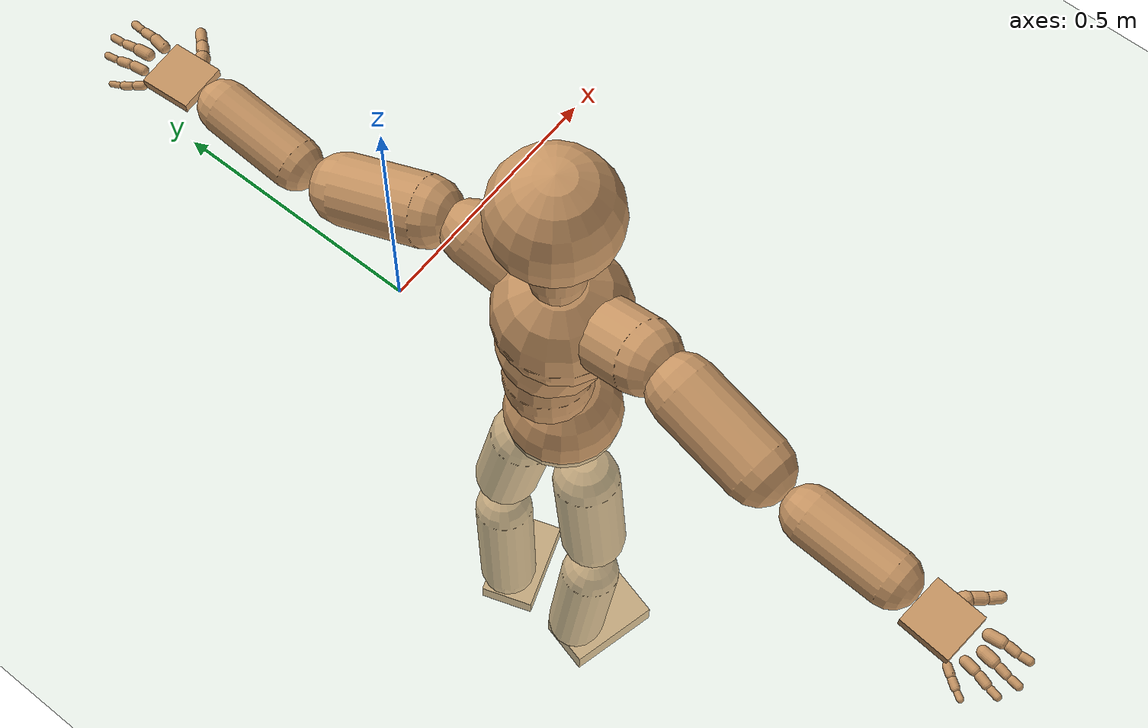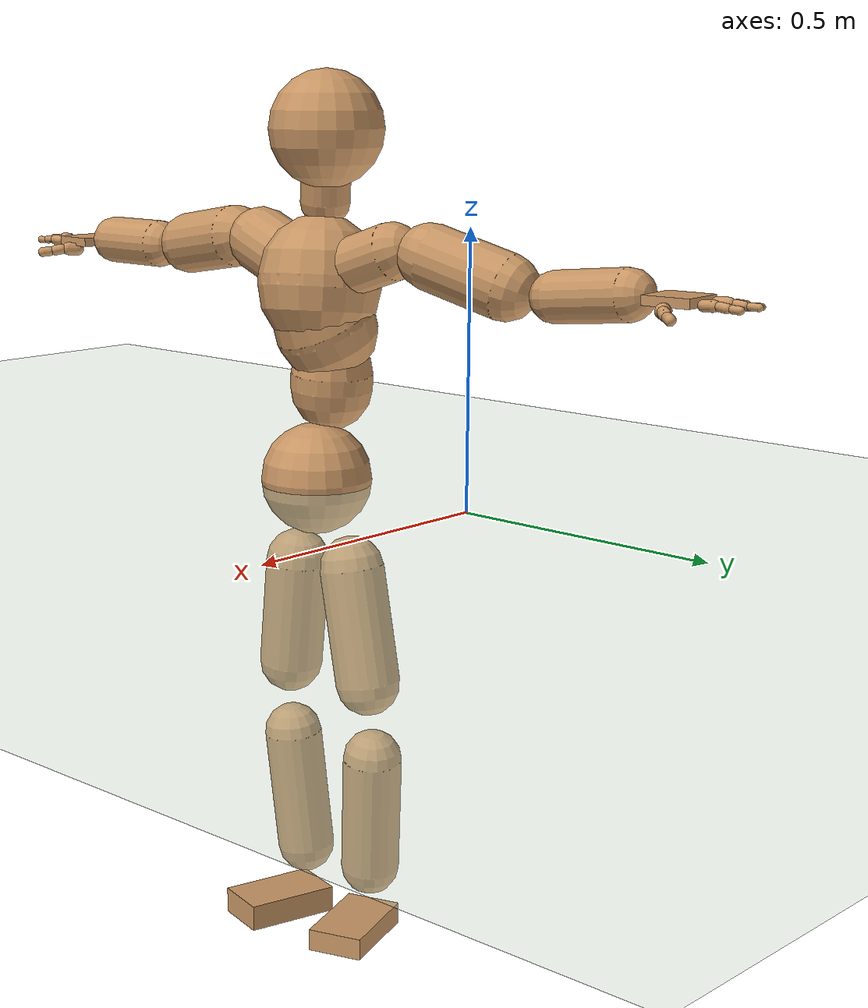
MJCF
<mujoco model="humanoid">
  <compiler coordinate="local" angle="radian"/>
  <default>
    <joint damping="0.0" armature="0.01" stiffness="0.0" limited="true"/>
    <geom conaffinity="1" condim="3" contype="7" margin="0.001" rgba="0.8 0.6 .4 1"/>
  </default>
  <asset>
    <texture type="skybox" builtin="gradient" rgb1=".4 .5 .6" rgb2="0 0 0" width="100" height="100"/>
    <texture builtin="flat" height="1278" mark="cross" markrgb="1 1 1" name="texgeom" random="0.01" rgb1="0.8 0.6 0.4" rgb2="0.8 0.6 0.4" type="cube" width="127"/>
    <texture builtin="checker" height="100" name="texplane" rgb1="0 0 0" rgb2="0.8 0.8 0.8" type="2d" width="100"/>
    <material name="MatPlane" reflectance="0.5" shininess="1" specular="1" texrepeat="60 60" texture="texplane"/>
    <material name="geom" texture="texgeom" texuniform="true"/>
  </asset>
  <worldbody>
    <light cutoff="100" diffuse="1 1 1" dir="-0 0 -1.3" directional="true" exponent="1" pos="0 0 1.3" specular=".1 .1 .1"/>
    <geom conaffinity="1" condim="3" name="floor" pos="0 0 0" rgba="0.8 0.9 0.8 1" size="100 100 .2" type="plane" material="MatPlane"/>
    <body name="Pelvis" pos="0.0014 -0.3707 0.0089">
      <freejoint name="Pelvis"/>
      <geom type="sphere" contype="1" conaffinity="1" density="500" size="0.1055" pos="0.0000 0.0000 0.0000" name="Pelvis"/>
      <body name="L_Hip" pos="-0.022 0.0567 -0.0939">
        <joint name="L_Hip_x" type="hinge" pos="0 0 0" axis="1 0 0" stiffness="800" damping="80" armature="0.02" range="-180.0000 180.0000"/>
        <joint name="L_Hip_y" type="hinge" pos="0 0 0" axis="0 1 0" stiffness="800" damping="80" armature="0.02" range="-180.0000 180.0000"/>
        <joint name="L_Hip_z" type="hinge" pos="0 0 0" axis="0 0 1" stiffness="800" damping="80" armature="0.02" range="-180.0000 180.0000"/>
        <geom type="capsule" contype="1" conaffinity="1" density="500" fromto="-0.0012 0.0131 -0.0740 -0.0047 0.0524 -0.2959" size="0.0613" name="L_Hip"/>
        <body name="L_Knee" pos="-0.0058 0.0655 -0.3699">
          <joint name="L_Knee_x" type="hinge" pos="0 0 0" axis="1 0 0" stiffness="800" damping="80" armature="0.02" range="-180.0000 180.0000"/>
          <joint name="L_Knee_y" type="hinge" pos="0 0 0" axis="0 1 0" stiffness="800" damping="80" armature="0.02" range="-180.0000 180.0000"/>
          <joint name="L_Knee_z" type="hinge" pos="0 0 0" axis="0 0 1" stiffness="800" damping="80" armature="0.02" range="-180.0000 180.0000"/>
          <geom type="capsule" contype="1" conaffinity="1" density="500" fromto="-0.0081 -0.0094 -0.0790 -0.0325 -0.0376 -0.3159" size="0.0564" name="L_Knee"/>
          <body name="L_Ankle" pos="-0.0407 -0.047 -0.3949">
            <joint name="L_Ankle_x" type="hinge" pos="0 0 0" axis="1 0 0" stiffness="800" damping="80" armature="0.02" range="-180.0000 180.0000"/>
            <joint name="L_Ankle_y" type="hinge" pos="0 0 0" axis="0 1 0" stiffness="800" damping="80" armature="0.02" range="-180.0000 180.0000"/>
            <joint name="L_Ankle_z" type="hinge" pos="0 0 0" axis="0 0 1" stiffness="800" damping="80" armature="0.02" range="-180.0000 180.0000"/>
            <geom type="box" contype="1" conaffinity="1" density="500" pos="0.0661 0.0225 -0.0283" size="0.0921 0.0539 0.021" quat="0.9866 0.0000 0.0000 0.1634" name="L_Ankle"/>
            <body name="L_Toe" pos="0.1323 0.0451 -0.0566">
              <joint name="L_Toe_x" type="hinge" pos="0 0 0" axis="1 0 0" stiffness="500" damping="50" armature="0.02" range="-180.0000 180.0000"/>
              <joint name="L_Toe_y" type="hinge" pos="0 0 0" axis="0 1 0" stiffness="500" damping="50" armature="0.02" range="-180.0000 180.0000"/>
              <joint name="L_Toe_z" type="hinge" pos="0 0 0" axis="0 0 1" stiffness="500" damping="50" armature="0.02" range="-180.0000 180.0000"/>
              <geom type="box" contype="1" conaffinity="1" density="500" pos="0.0000 0.0000 0.0292" size="0.0011 0.0026 0.0011" quat="0.9858 0.0000 0.0000 0.1677" name="L_Toe"/>
            </body>
          </body>
        </body>
      </body>
      <body name="R_Hip" pos="-0.0141 -0.0589 -0.1048">
        <joint name="R_Hip_x" type="hinge" pos="0 0 0" axis="1 0 0" stiffness="800" damping="80" armature="0.02" range="-180.0000 180.0000"/>
        <joint name="R_Hip_y" type="hinge" pos="0 0 0" axis="0 1 0" stiffness="800" damping="80" armature="0.02" range="-180.0000 180.0000"/>
        <joint name="R_Hip_z" type="hinge" pos="0 0 0" axis="0 0 1" stiffness="800" damping="80" armature="0.02" range="-180.0000 180.0000"/>
        <geom type="capsule" contype="1" conaffinity="1" density="500" fromto="-0.0029 -0.0098 -0.0707 -0.0114 -0.0391 -0.2828" size="0.0612" name="R_Hip"/>
        <body name="R_Knee" pos="-0.0143 -0.0489 -0.3535">
          <joint name="R_Knee_x" type="hinge" pos="0 0 0" axis="1 0 0" stiffness="800" damping="80" armature="0.02" range="-180.0000 180.0000"/>
          <joint name="R_Knee_y" type="hinge" pos="0 0 0" axis="0 1 0" stiffness="800" damping="80" armature="0.02" range="-180.0000 180.0000"/>
          <joint name="R_Knee_z" type="hinge" pos="0 0 0" axis="0 0 1" stiffness="800" damping="80" armature="0.02" range="-180.0000 180.0000"/>
          <geom type="capsule" contype="1" conaffinity="1" density="500" fromto="-0.0080 0.0036 -0.0815 -0.0319 0.0144 -0.3259" size="0.0562" name="R_Knee"/>
          <body name="R_Ankle" pos="-0.0399 0.018 -0.4073">
            <joint name="R_Ankle_x" type="hinge" pos="0 0 0" axis="1 0 0" stiffness="800" damping="80" armature="0.02" range="-180.0000 180.0000"/>
            <joint name="R_Ankle_y" type="hinge" pos="0 0 0" axis="0 1 0" stiffness="800" damping="80" armature="0.02" range="-180.0000 180.0000"/>
            <joint name="R_Ankle_z" type="hinge" pos="0 0 0" axis="0 0 1" stiffness="800" damping="80" armature="0.02" range="-180.0000 180.0000"/>
            <geom type="box" contype="1" conaffinity="1" density="500" pos="0.0695 -0.0178 -0.0278" size="0.0921 0.0539 0.0252" quat="0.9921 0.0000 0.0000 -0.1253" name="R_Ankle"/>
            <body name="R_Toe" pos="0.1389 -0.0357 -0.0556">
              <joint name="R_Toe_x" type="hinge" pos="0 0 0" axis="1 0 0" stiffness="500" damping="50" armature="0.02" range="-180.0000 180.0000"/>
              <joint name="R_Toe_y" type="hinge" pos="0 0 0" axis="0 1 0" stiffness="500" damping="50" armature="0.02" range="-180.0000 180.0000"/>
              <joint name="R_Toe_z" type="hinge" pos="0 0 0" axis="0 0 1" stiffness="500" damping="50" armature="0.02" range="-180.0000 180.0000"/>
              <geom type="box" contype="1" conaffinity="1" density="500" pos="0.0000 0.0000 0.0245" size="0.001 0.0026 0.0011" quat="0.9931 0.0000 0.0000 -0.1170" name="R_Toe"/>
            </body>
          </body>
        </body>
      </body>
      <body name="Torso" pos="-0.0387 -0.0008 0.1068">
        <joint name="Torso_x" type="hinge" pos="0 0 0" axis="1 0 0" stiffness="1000" damping="100" armature="0.02" range="-180.0000 180.0000"/>
        <joint name="Torso_y" type="hinge" pos="0 0 0" axis="0 1 0" stiffness="1000" damping="100" armature="0.02" range="-180.0000 180.0000"/>
        <joint name="Torso_z" type="hinge" pos="0 0 0" axis="0 0 1" stiffness="1000" damping="100" armature="0.02" range="-180.0000 180.0000"/>
        <geom type="capsule" contype="1" conaffinity="1" density="500" fromto="0.0031 0.0068 0.0899 0.0021 0.0045 0.0599" size="0.0773" name="Torso"/>
        <body name="Spine" pos="0.0052 0.0113 0.1499">
          <joint name="Spine_x" type="hinge" pos="0 0 0" axis="1 0 0" stiffness="1000" damping="100" armature="0.02" range="-180.0000 180.0000"/>
          <joint name="Spine_y" type="hinge" pos="0 0 0" axis="0 1 0" stiffness="1000" damping="100" armature="0.02" range="-180.0000 180.0000"/>
          <joint name="Spine_z" type="hinge" pos="0 0 0" axis="0 0 1" stiffness="1000" damping="100" armature="0.02" range="-180.0000 180.0000"/>
          <geom type="capsule" contype="1" conaffinity="1" density="500" fromto="0.0166 -0.0058 0.0351 0.0111 -0.0038 0.0234" size="0.0961" name="Spine"/>
          <body name="Chest" pos="0.0277 -0.0096 0.0585">
            <joint name="Chest_x" type="hinge" pos="0 0 0" axis="1 0 0" stiffness="1000" damping="100" armature="0.02" range="-180.0000 180.0000"/>
            <joint name="Chest_y" type="hinge" pos="0 0 0" axis="0 1 0" stiffness="1000" damping="100" armature="0.02" range="-180.0000 180.0000"/>
            <joint name="Chest_z" type="hinge" pos="0 0 0" axis="0 0 1" stiffness="1000" damping="100" armature="0.02" range="-180.0000 180.0000"/>
            <geom type="capsule" contype="1" conaffinity="1" density="500" fromto="-0.0080 -0.0036 0.0639 -0.0053 -0.0024 0.0426" size="0.1149" name="Chest"/>
            <body name="Neck" pos="-0.0293 -0.0118 0.1662">
              <joint name="Neck_x" type="hinge" pos="0 0 0" axis="1 0 0" stiffness="500" damping="50" armature="0.02" range="-180.0000 180.0000"/>
              <joint name="Neck_y" type="hinge" pos="0 0 0" axis="0 1 0" stiffness="500" damping="50" armature="0.02" range="-180.0000 180.0000"/>
              <joint name="Neck_z" type="hinge" pos="0 0 0" axis="0 0 1" stiffness="500" damping="50" armature="0.02" range="-180.0000 180.0000"/>
              <geom type="capsule" contype="1" conaffinity="1" density="500" fromto="0.0042 0.0051 0.0332 0.0168 0.0203 0.1329" size="0.0467" name="Neck"/>
              <body name="Head" pos="0.021 0.0253 0.1662">
                <joint name="Head_x" type="hinge" pos="0 0 0" axis="1 0 0" stiffness="500" damping="50" armature="0.02" range="-180.0000 180.0000"/>
                <joint name="Head_y" type="hinge" pos="0 0 0" axis="0 1 0" stiffness="500" damping="50" armature="0.02" range="-180.0000 180.0000"/>
                <joint name="Head_z" type="hinge" pos="0 0 0" axis="0 0 1" stiffness="500" damping="50" armature="0.02" range="-180.0000 180.0000"/>
                <geom type="sphere" contype="1" conaffinity="1" density="500" size="0.1075" pos="0.0000 0.0000 0.0000" name="Head"/>
              </body>
            </body>
            <body name="L_Thorax" pos="-0.0038 0.0461 0.0763">
              <joint name="L_Thorax_x" type="hinge" pos="0 0 0" axis="1 0 0" stiffness="500" damping="50" armature="0.02" range="-180.0000 180.0000"/>
              <joint name="L_Thorax_y" type="hinge" pos="0 0 0" axis="0 1 0" stiffness="500" damping="50" armature="0.02" range="-180.0000 180.0000"/>
              <joint name="L_Thorax_z" type="hinge" pos="0 0 0" axis="0 0 1" stiffness="500" damping="50" armature="0.02" range="-180.0000 180.0000"/>
              <geom type="capsule" contype="1" conaffinity="1" density="500" fromto="-0.0024 0.0312 0.0109 -0.0096 0.1249 0.0434" size="0.0539" name="L_Thorax"/>
              <body name="L_Shoulder" pos="-0.0119 0.1561 0.0543">
                <joint name="L_Shoulder_x" type="hinge" pos="0 0 0" axis="1 0 0" stiffness="500" damping="50" armature="0.02" range="-180.0000 180.0000"/>
                <joint name="L_Shoulder_y" type="hinge" pos="0 0 0" axis="0 1 0" stiffness="500" damping="50" armature="0.02" range="-180.0000 180.0000"/>
                <joint name="L_Shoulder_z" type="hinge" pos="0 0 0" axis="0 0 1" stiffness="500" damping="50" armature="0.02" range="-180.0000 180.0000"/>
                <geom type="capsule" contype="1" conaffinity="1" density="500" fromto="-0.0105 0.0491 -0.0149 -0.0420 0.1964 -0.0596" size="0.0602" name="L_Shoulder"/>
                <body name="L_Elbow" pos="-0.0525 0.2455 -0.0745">
                  <joint name="L_Elbow_x" type="hinge" pos="0 0 0" axis="1 0 0" stiffness="500" damping="50" armature="0.02" range="-720.0000 720.0000"/>
                  <joint name="L_Elbow_y" type="hinge" pos="0 0 0" axis="0 1 0" stiffness="500" damping="50" armature="0.02" range="-720.0000 720.0000"/>
                  <joint name="L_Elbow_z" type="hinge" pos="0 0 0" axis="0 0 1" stiffness="500" damping="50" armature="0.02" range="-720.0000 720.0000"/>
                  <geom type="capsule" contype="1" conaffinity="1" density="500" fromto="0.0005 0.0510 0.0054 0.0020 0.2039 0.0216" size="0.0459" name="L_Elbow"/>
                  <body name="L_Wrist" pos="0.0025 0.2548 0.027">
                    <joint name="L_Wrist_x" type="hinge" pos="0 0 0" axis="1 0 0" stiffness="300" damping="30" armature="0.02" range="-180.0000 180.0000"/>
                    <joint name="L_Wrist_y" type="hinge" pos="0 0 0" axis="0 1 0" stiffness="300" damping="30" armature="0.02" range="-180.0000 180.0000"/>
                    <joint name="L_Wrist_z" type="hinge" pos="0 0 0" axis="0 0 1" stiffness="300" damping="30" armature="0.02" range="-180.0000 180.0000"/>
                    <geom type="box" contype="1" conaffinity="1" density="500" pos="-0.0031 0.0431 -0.0054" size="0.0447 0.0435 0.0085" quat="0.7321 0.0000 0.0000 -0.6812" name="L_Wrist"/>
                    <body name="L_Index1" pos="0.0221 0.1018 -0.0075">
                      <joint name="L_Index1_x" type="hinge" pos="0 0 0" axis="1 0 0" stiffness="100" damping="10" armature="0.02" range="-180.0000 180.0000"/>
                      <joint name="L_Index1_y" type="hinge" pos="0 0 0" axis="0 1 0" stiffness="100" damping="10" armature="0.02" range="-180.0000 180.0000"/>
                      <joint name="L_Index1_z" type="hinge" pos="0 0 0" axis="0 0 1" stiffness="100" damping="10" armature="0.02" range="-180.0000 180.0000"/>
                      <geom type="capsule" contype="1" conaffinity="1" density="500" fromto="0.0008 0.0066 0.0004 0.0031 0.0264 0.0016" size="0.0101" name="L_Index1"/>
                      <body name="L_Index2" pos="0.0038 0.033 0.002">
                        <joint name="L_Index2_x" type="hinge" pos="0 0 0" axis="1 0 0" stiffness="100" damping="10" armature="0.02" range="-180.0000 180.0000"/>
                        <joint name="L_Index2_y" type="hinge" pos="0 0 0" axis="0 1 0" stiffness="100" damping="10" armature="0.02" range="-180.0000 180.0000"/>
                        <joint name="L_Index2_z" type="hinge" pos="0 0 0" axis="0 0 1" stiffness="100" damping="10" armature="0.02" range="-180.0000 180.0000"/>
                        <geom type="capsule" contype="1" conaffinity="1" density="500" fromto="-0.0000 0.0046 -0.0005 -0.0002 0.0186 -0.0021" size="0.0081" name="L_Index2"/>
                        <body name="L_Index3" pos="-0.0002 0.0232 -0.0026">
                          <joint name="L_Index3_x" type="hinge" pos="0 0 0" axis="1 0 0" stiffness="100" damping="10" armature="0.02" range="-180.0000 180.0000"/>
                          <joint name="L_Index3_y" type="hinge" pos="0 0 0" axis="0 1 0" stiffness="100" damping="10" armature="0.02" range="-180.0000 180.0000"/>
                          <joint name="L_Index3_z" type="hinge" pos="0 0 0" axis="0 0 1" stiffness="100" damping="10" armature="0.02" range="-180.0000 180.0000"/>
                          <geom type="capsule" contype="1" conaffinity="1" density="500" fromto="0.0004 0.0050 -0.0001 0.0014 0.0202 -0.0005" size="0.0069" name="L_Index3"/>
                        </body>
                      </body>
                    </body>
                    <body name="L_Middle1" pos="-0.0039 0.1098 -0.0045">
                      <joint name="L_Middle1_x" type="hinge" pos="0 0 0" axis="1 0 0" stiffness="100" damping="10" armature="0.02" range="-180.0000 180.0000"/>
                      <joint name="L_Middle1_y" type="hinge" pos="0 0 0" axis="0 1 0" stiffness="100" damping="10" armature="0.02" range="-180.0000 180.0000"/>
                      <joint name="L_Middle1_z" type="hinge" pos="0 0 0" axis="0 0 1" stiffness="100" damping="10" armature="0.02" range="-180.0000 180.0000"/>
                      <geom type="capsule" contype="1" conaffinity="1" density="500" fromto="-0.0009 0.0063 0.0001 -0.0036 0.0252 0.0005" size="0.0102" name="L_Middle1"/>
                      <body name="L_Middle2" pos="-0.0045 0.0315 0.0006">
                        <joint name="L_Middle2_x" type="hinge" pos="0 0 0" axis="1 0 0" stiffness="100" damping="10" armature="0.02" range="-180.0000 180.0000"/>
                        <joint name="L_Middle2_y" type="hinge" pos="0 0 0" axis="0 1 0" stiffness="100" damping="10" armature="0.02" range="-180.0000 180.0000"/>
                        <joint name="L_Middle2_z" type="hinge" pos="0 0 0" axis="0 0 1" stiffness="100" damping="10" armature="0.02" range="-180.0000 180.0000"/>
                        <geom type="capsule" contype="1" conaffinity="1" density="500" fromto="-0.0009 0.0048 -0.0005 -0.0035 0.0192 -0.0021" size="0.0075" name="L_Middle2"/>
                        <body name="L_Middle3" pos="-0.0044 0.024 -0.0026">
                          <joint name="L_Middle3_x" type="hinge" pos="0 0 0" axis="1 0 0" stiffness="100" damping="10" armature="0.02" range="-180.0000 180.0000"/>
                          <joint name="L_Middle3_y" type="hinge" pos="0 0 0" axis="0 1 0" stiffness="100" damping="10" armature="0.02" range="-180.0000 180.0000"/>
                          <joint name="L_Middle3_z" type="hinge" pos="0 0 0" axis="0 0 1" stiffness="100" damping="10" armature="0.02" range="-180.0000 180.0000"/>
                          <geom type="capsule" contype="1" conaffinity="1" density="500" fromto="-0.0005 0.0052 -0.0001 -0.0019 0.0208 -0.0005" size="0.0065" name="L_Middle3"/>
                        </body>
                      </body>
                    </body>
                    <body name="L_Pinky1" pos="-0.0483 0.0838 -0.014">
                      <joint name="L_Pinky1_x" type="hinge" pos="0 0 0" axis="1 0 0" stiffness="100" damping="10" armature="0.02" range="-180.0000 180.0000"/>
                      <joint name="L_Pinky1_y" type="hinge" pos="0 0 0" axis="0 1 0" stiffness="100" damping="10" armature="0.02" range="-180.0000 180.0000"/>
                      <joint name="L_Pinky1_z" type="hinge" pos="0 0 0" axis="0 0 1" stiffness="100" damping="10" armature="0.02" range="-180.0000 180.0000"/>
                      <geom type="capsule" contype="1" conaffinity="1" density="500" fromto="-0.0024 0.0034 -0.0004 -0.0097 0.0135 -0.0015" size="0.0072" name="L_Pinky1"/>
                      <body name="L_Pinky2" pos="-0.0122 0.0169 -0.0018">
                        <joint name="L_Pinky2_x" type="hinge" pos="0 0 0" axis="1 0 0" stiffness="100" damping="10" armature="0.02" range="-180.0000 180.0000"/>
                        <joint name="L_Pinky2_y" type="hinge" pos="0 0 0" axis="0 1 0" stiffness="100" damping="10" armature="0.02" range="-180.0000 180.0000"/>
                        <joint name="L_Pinky2_z" type="hinge" pos="0 0 0" axis="0 0 1" stiffness="100" damping="10" armature="0.02" range="-180.0000 180.0000"/>
                        <geom type="capsule" contype="1" conaffinity="1" density="500" fromto="-0.0022 0.0033 -0.0004 -0.0089 0.0133 -0.0017" size="0.0069" name="L_Pinky2"/>
                        <body name="L_Pinky3" pos="-0.0112 0.0166 -0.0021">
                          <joint name="L_Pinky3_x" type="hinge" pos="0 0 0" axis="1 0 0" stiffness="100" damping="10" armature="0.02" range="-180.0000 180.0000"/>
                          <joint name="L_Pinky3_y" type="hinge" pos="0 0 0" axis="0 1 0" stiffness="100" damping="10" armature="0.02" range="-180.0000 180.0000"/>
                          <joint name="L_Pinky3_z" type="hinge" pos="0 0 0" axis="0 0 1" stiffness="100" damping="10" armature="0.02" range="-180.0000 180.0000"/>
                          <geom type="capsule" contype="1" conaffinity="1" density="500" fromto="-0.0018 0.0037 -0.0000 -0.0073 0.0149 -0.0001" size="0.0052" name="L_Pinky3"/>
                        </body>
                      </body>
                    </body>
                    <body name="L_Ring1" pos="-0.0301 0.0975 -0.0079">
                      <joint name="L_Ring1_x" type="hinge" pos="0 0 0" axis="1 0 0" stiffness="100" damping="10" armature="0.02" range="-180.0000 180.0000"/>
                      <joint name="L_Ring1_y" type="hinge" pos="0 0 0" axis="0 1 0" stiffness="100" damping="10" armature="0.02" range="-180.0000 180.0000"/>
                      <joint name="L_Ring1_z" type="hinge" pos="0 0 0" axis="0 0 1" stiffness="100" damping="10" armature="0.02" range="-180.0000 180.0000"/>
                      <geom type="capsule" contype="1" conaffinity="1" density="500" fromto="-0.0010 0.0059 0.0001 -0.0040 0.0234 0.0005" size="0.0087" name="L_Ring1"/>
                      <body name="L_Ring2" pos="-0.005 0.0293 0.0006">
                        <joint name="L_Ring2_x" type="hinge" pos="0 0 0" axis="1 0 0" stiffness="100" damping="10" armature="0.02" range="-180.0000 180.0000"/>
                        <joint name="L_Ring2_y" type="hinge" pos="0 0 0" axis="0 1 0" stiffness="100" damping="10" armature="0.02" range="-180.0000 180.0000"/>
                        <joint name="L_Ring2_z" type="hinge" pos="0 0 0" axis="0 0 1" stiffness="100" damping="10" armature="0.02" range="-180.0000 180.0000"/>
                        <geom type="capsule" contype="1" conaffinity="1" density="500" fromto="-0.0014 0.0047 -0.0005 -0.0054 0.0190 -0.0020" size="0.008" name="L_Ring2"/>
                        <body name="L_Ring3" pos="-0.0068 0.0237 -0.0025">
                          <joint name="L_Ring3_x" type="hinge" pos="0 0 0" axis="1 0 0" stiffness="100" damping="10" armature="0.02" range="-180.0000 180.0000"/>
                          <joint name="L_Ring3_y" type="hinge" pos="0 0 0" axis="0 1 0" stiffness="100" damping="10" armature="0.02" range="-180.0000 180.0000"/>
                          <joint name="L_Ring3_z" type="hinge" pos="0 0 0" axis="0 0 1" stiffness="100" damping="10" armature="0.02" range="-180.0000 180.0000"/>
                          <geom type="capsule" contype="1" conaffinity="1" density="500" fromto="-0.0010 0.0051 -0.0001 -0.0038 0.0206 -0.0004" size="0.0061" name="L_Ring3"/>
                        </body>
                      </body>
                    </body>
                    <body name="L_Thumb1" pos="0.0292 0.0382 -0.0203">
                      <joint name="L_Thumb1_x" type="hinge" pos="0 0 0" axis="1 0 0" stiffness="100" damping="10" armature="0.02" range="-180.0000 180.0000"/>
                      <joint name="L_Thumb1_y" type="hinge" pos="0 0 0" axis="0 1 0" stiffness="100" damping="10" armature="0.02" range="-180.0000 180.0000"/>
                      <joint name="L_Thumb1_z" type="hinge" pos="0 0 0" axis="0 0 1" stiffness="100" damping="10" armature="0.02" range="-180.0000 180.0000"/>
                      <geom type="capsule" contype="1" conaffinity="1" density="500" fromto="0.0056 0.0032 0.0005 0.0225 0.0129 0.0018" size="0.0133" name="L_Thumb1"/>
                      <body name="L_Thumb2" pos="0.0281 0.0161 0.0023">
                        <joint name="L_Thumb2_x" type="hinge" pos="0 0 0" axis="1 0 0" stiffness="100" damping="10" armature="0.02" range="-180.0000 180.0000"/>
                        <joint name="L_Thumb2_y" type="hinge" pos="0 0 0" axis="0 1 0" stiffness="100" damping="10" armature="0.02" range="-180.0000 180.0000"/>
                        <joint name="L_Thumb2_z" type="hinge" pos="0 0 0" axis="0 0 1" stiffness="100" damping="10" armature="0.02" range="-180.0000 180.0000"/>
                        <geom type="capsule" contype="1" conaffinity="1" density="500" fromto="0.0035 0.0040 -0.0010 0.0138 0.0159 -0.0041" size="0.0105" name="L_Thumb2"/>
                        <body name="L_Thumb3" pos="0.0173 0.0199 -0.0051">
                          <joint name="L_Thumb3_x" type="hinge" pos="0 0 0" axis="1 0 0" stiffness="100" damping="10" armature="0.02" range="-180.0000 180.0000"/>
                          <joint name="L_Thumb3_y" type="hinge" pos="0 0 0" axis="0 1 0" stiffness="100" damping="10" armature="0.02" range="-180.0000 180.0000"/>
                          <joint name="L_Thumb3_z" type="hinge" pos="0 0 0" axis="0 0 1" stiffness="100" damping="10" armature="0.02" range="-180.0000 180.0000"/>
                          <geom type="capsule" contype="1" conaffinity="1" density="500" fromto="0.0039 0.0044 -0.0006 0.0154 0.0175 -0.0025" size="0.0095" name="L_Thumb3"/>
                        </body>
                      </body>
                    </body>
                  </body>
                </body>
              </body>
            </body>
            <body name="R_Thorax" pos="-0.0066 -0.0522 0.0769">
              <joint name="R_Thorax_x" type="hinge" pos="0 0 0" axis="1 0 0" stiffness="500" damping="50" armature="0.02" range="-180.0000 180.0000"/>
              <joint name="R_Thorax_y" type="hinge" pos="0 0 0" axis="0 1 0" stiffness="500" damping="50" armature="0.02" range="-180.0000 180.0000"/>
              <joint name="R_Thorax_z" type="hinge" pos="0 0 0" axis="0 0 1" stiffness="500" damping="50" armature="0.02" range="-180.0000 180.0000"/>
              <geom type="capsule" contype="1" conaffinity="1" density="500" fromto="-0.0027 -0.0287 0.0107 -0.0107 -0.1148 0.0427" size="0.0633" name="R_Thorax"/>
              <body name="R_Shoulder" pos="-0.0134 -0.1435 0.0533">
                <joint name="R_Shoulder_x" type="hinge" pos="0 0 0" axis="1 0 0" stiffness="500" damping="50" armature="0.02" range="-180.0000 180.0000"/>
                <joint name="R_Shoulder_y" type="hinge" pos="0 0 0" axis="0 1 0" stiffness="500" damping="50" armature="0.02" range="-180.0000 180.0000"/>
                <joint name="R_Shoulder_z" type="hinge" pos="0 0 0" axis="0 0 1" stiffness="500" damping="50" armature="0.02" range="-180.0000 180.0000"/>
                <geom type="capsule" contype="1" conaffinity="1" density="500" fromto="-0.0070 -0.0528 -0.0084 -0.0280 -0.2111 -0.0336" size="0.0594" name="R_Shoulder"/>
                <body name="R_Elbow" pos="-0.035 -0.2638 -0.042">
                  <joint name="R_Elbow_x" type="hinge" pos="0 0 0" axis="1 0 0" stiffness="500" damping="50" armature="0.02" range="-720.0000 720.0000"/>
                  <joint name="R_Elbow_y" type="hinge" pos="0 0 0" axis="0 1 0" stiffness="500" damping="50" armature="0.02" range="-720.0000 720.0000"/>
                  <joint name="R_Elbow_z" type="hinge" pos="0 0 0" axis="0 0 1" stiffness="500" damping="50" armature="0.02" range="-720.0000 720.0000"/>
                  <geom type="capsule" contype="1" conaffinity="1" density="500" fromto="-0.0020 -0.0496 -0.0003 -0.0079 -0.1984 -0.0011" size="0.0469" name="R_Elbow"/>
                  <body name="R_Wrist" pos="-0.0099 -0.2479 -0.0013">
                    <joint name="R_Wrist_x" type="hinge" pos="0 0 0" axis="1 0 0" stiffness="300" damping="30" armature="0.02" range="-180.0000 180.0000"/>
                    <joint name="R_Wrist_y" type="hinge" pos="0 0 0" axis="0 1 0" stiffness="300" damping="30" armature="0.02" range="-180.0000 180.0000"/>
                    <joint name="R_Wrist_z" type="hinge" pos="0 0 0" axis="0 0 1" stiffness="300" damping="30" armature="0.02" range="-180.0000 180.0000"/>
                    <geom type="box" contype="1" conaffinity="1" density="500" pos="-0.0036 -0.0428 -0.0073" size="0.0447 0.0444 0.0087" quat="0.7358 0.0000 0.0000 0.6772" name="R_Wrist"/>
                    <body name="R_Index1" pos="0.0212 -0.1012 -0.0113">
                      <joint name="R_Index1_x" type="hinge" pos="0 0 0" axis="1 0 0" stiffness="100" damping="10" armature="0.02" range="-180.0000 180.0000"/>
                      <joint name="R_Index1_y" type="hinge" pos="0 0 0" axis="0 1 0" stiffness="100" damping="10" armature="0.02" range="-180.0000 180.0000"/>
                      <joint name="R_Index1_z" type="hinge" pos="0 0 0" axis="0 0 1" stiffness="100" damping="10" armature="0.02" range="-180.0000 180.0000"/>
                      <geom type="capsule" contype="1" conaffinity="1" density="500" fromto="0.0008 -0.0066 0.0004 0.0031 -0.0264 0.0016" size="0.0101" name="R_Index1"/>
                      <body name="R_Index2" pos="0.0038 -0.033 0.002">
                        <joint name="R_Index2_x" type="hinge" pos="0 0 0" axis="1 0 0" stiffness="100" damping="10" armature="0.02" range="-180.0000 180.0000"/>
                        <joint name="R_Index2_y" type="hinge" pos="0 0 0" axis="0 1 0" stiffness="100" damping="10" armature="0.02" range="-180.0000 180.0000"/>
                        <joint name="R_Index2_z" type="hinge" pos="0 0 0" axis="0 0 1" stiffness="100" damping="10" armature="0.02" range="-180.0000 180.0000"/>
                        <geom type="capsule" contype="1" conaffinity="1" density="500" fromto="-0.0000 -0.0046 -0.0005 -0.0002 -0.0186 -0.0021" size="0.0081" name="R_Index2"/>
                        <body name="R_Index3" pos="-0.0002 -0.0232 -0.0026">
                          <joint name="R_Index3_x" type="hinge" pos="0 0 0" axis="1 0 0" stiffness="100" damping="10" armature="0.02" range="-180.0000 180.0000"/>
                          <joint name="R_Index3_y" type="hinge" pos="0 0 0" axis="0 1 0" stiffness="100" damping="10" armature="0.02" range="-180.0000 180.0000"/>
                          <joint name="R_Index3_z" type="hinge" pos="0 0 0" axis="0 0 1" stiffness="100" damping="10" armature="0.02" range="-180.0000 180.0000"/>
                          <geom type="capsule" contype="1" conaffinity="1" density="500" fromto="0.0004 -0.0042 -0.0001 0.0014 -0.0170 -0.0005" size="0.0072" name="R_Index3"/>
                        </body>
                      </body>
                    </body>
                    <body name="R_Middle1" pos="-0.0049 -0.1093 -0.0083">
                      <joint name="R_Middle1_x" type="hinge" pos="0 0 0" axis="1 0 0" stiffness="100" damping="10" armature="0.02" range="-180.0000 180.0000"/>
                      <joint name="R_Middle1_y" type="hinge" pos="0 0 0" axis="0 1 0" stiffness="100" damping="10" armature="0.02" range="-180.0000 180.0000"/>
                      <joint name="R_Middle1_z" type="hinge" pos="0 0 0" axis="0 0 1" stiffness="100" damping="10" armature="0.02" range="-180.0000 180.0000"/>
                      <geom type="capsule" contype="1" conaffinity="1" density="500" fromto="-0.0009 -0.0063 0.0001 -0.0036 -0.0252 0.0005" size="0.0102" name="R_Middle1"/>
                      <body name="R_Middle2" pos="-0.0045 -0.0315 0.0006">
                        <joint name="R_Middle2_x" type="hinge" pos="0 0 0" axis="1 0 0" stiffness="100" damping="10" armature="0.02" range="-180.0000 180.0000"/>
                        <joint name="R_Middle2_y" type="hinge" pos="0 0 0" axis="0 1 0" stiffness="100" damping="10" armature="0.02" range="-180.0000 180.0000"/>
                        <joint name="R_Middle2_z" type="hinge" pos="0 0 0" axis="0 0 1" stiffness="100" damping="10" armature="0.02" range="-180.0000 180.0000"/>
                        <geom type="capsule" contype="1" conaffinity="1" density="500" fromto="-0.0009 -0.0048 -0.0005 -0.0035 -0.0192 -0.0021" size="0.0075" name="R_Middle2"/>
                        <body name="R_Middle3" pos="-0.0044 -0.024 -0.0026">
                          <joint name="R_Middle3_x" type="hinge" pos="0 0 0" axis="1 0 0" stiffness="100" damping="10" armature="0.02" range="-180.0000 180.0000"/>
                          <joint name="R_Middle3_y" type="hinge" pos="0 0 0" axis="0 1 0" stiffness="100" damping="10" armature="0.02" range="-180.0000 180.0000"/>
                          <joint name="R_Middle3_z" type="hinge" pos="0 0 0" axis="0 0 1" stiffness="100" damping="10" armature="0.02" range="-180.0000 180.0000"/>
                          <geom type="capsule" contype="1" conaffinity="1" density="500" fromto="-0.0005 -0.0044 -0.0001 -0.0019 -0.0176 -0.0005" size="0.0068" name="R_Middle3"/>
                        </body>
                      </body>
                    </body>
                    <body name="R_Pinky1" pos="-0.0492 -0.0832 -0.0178">
                      <joint name="R_Pinky1_x" type="hinge" pos="0 0 0" axis="1 0 0" stiffness="100" damping="10" armature="0.02" range="-180.0000 180.0000"/>
                      <joint name="R_Pinky1_y" type="hinge" pos="0 0 0" axis="0 1 0" stiffness="100" damping="10" armature="0.02" range="-180.0000 180.0000"/>
                      <joint name="R_Pinky1_z" type="hinge" pos="0 0 0" axis="0 0 1" stiffness="100" damping="10" armature="0.02" range="-180.0000 180.0000"/>
                      <geom type="capsule" contype="1" conaffinity="1" density="500" fromto="-0.0024 -0.0034 -0.0004 -0.0097 -0.0135 -0.0015" size="0.0072" name="R_Pinky1"/>
                      <body name="R_Pinky2" pos="-0.0122 -0.0169 -0.0018">
                        <joint name="R_Pinky2_x" type="hinge" pos="0 0 0" axis="1 0 0" stiffness="100" damping="10" armature="0.02" range="-180.0000 180.0000"/>
                        <joint name="R_Pinky2_y" type="hinge" pos="0 0 0" axis="0 1 0" stiffness="100" damping="10" armature="0.02" range="-180.0000 180.0000"/>
                        <joint name="R_Pinky2_z" type="hinge" pos="0 0 0" axis="0 0 1" stiffness="100" damping="10" armature="0.02" range="-180.0000 180.0000"/>
                        <geom type="capsule" contype="1" conaffinity="1" density="500" fromto="-0.0022 -0.0033 -0.0004 -0.0089 -0.0133 -0.0017" size="0.0069" name="R_Pinky2"/>
                        <body name="R_Pinky3" pos="-0.0112 -0.0166 -0.0021">
                          <joint name="R_Pinky3_x" type="hinge" pos="0 0 0" axis="1 0 0" stiffness="100" damping="10" armature="0.02" range="-180.0000 180.0000"/>
                          <joint name="R_Pinky3_y" type="hinge" pos="0 0 0" axis="0 1 0" stiffness="100" damping="10" armature="0.02" range="-180.0000 180.0000"/>
                          <joint name="R_Pinky3_z" type="hinge" pos="0 0 0" axis="0 0 1" stiffness="100" damping="10" armature="0.02" range="-180.0000 180.0000"/>
                          <geom type="capsule" contype="1" conaffinity="1" density="500" fromto="-0.0018 -0.0029 -0.0000 -0.0073 -0.0117 -0.0001" size="0.0054" name="R_Pinky3"/>
                        </body>
                      </body>
                    </body>
                    <body name="R_Ring1" pos="-0.031 -0.097 -0.0117">
                      <joint name="R_Ring1_x" type="hinge" pos="0 0 0" axis="1 0 0" stiffness="100" damping="10" armature="0.02" range="-180.0000 180.0000"/>
                      <joint name="R_Ring1_y" type="hinge" pos="0 0 0" axis="0 1 0" stiffness="100" damping="10" armature="0.02" range="-180.0000 180.0000"/>
                      <joint name="R_Ring1_z" type="hinge" pos="0 0 0" axis="0 0 1" stiffness="100" damping="10" armature="0.02" range="-180.0000 180.0000"/>
                      <geom type="capsule" contype="1" conaffinity="1" density="500" fromto="-0.0010 -0.0059 0.0001 -0.0040 -0.0234 0.0005" size="0.0087" name="R_Ring1"/>
                      <body name="R_Ring2" pos="-0.005 -0.0293 0.0006">
                        <joint name="R_Ring2_x" type="hinge" pos="0 0 0" axis="1 0 0" stiffness="100" damping="10" armature="0.02" range="-180.0000 180.0000"/>
                        <joint name="R_Ring2_y" type="hinge" pos="0 0 0" axis="0 1 0" stiffness="100" damping="10" armature="0.02" range="-180.0000 180.0000"/>
                        <joint name="R_Ring2_z" type="hinge" pos="0 0 0" axis="0 0 1" stiffness="100" damping="10" armature="0.02" range="-180.0000 180.0000"/>
                        <geom type="capsule" contype="1" conaffinity="1" density="500" fromto="-0.0014 -0.0047 -0.0005 -0.0054 -0.0190 -0.0020" size="0.008" name="R_Ring2"/>
                        <body name="R_Ring3" pos="-0.0068 -0.0237 -0.0025">
                          <joint name="R_Ring3_x" type="hinge" pos="0 0 0" axis="1 0 0" stiffness="100" damping="10" armature="0.02" range="-180.0000 180.0000"/>
                          <joint name="R_Ring3_y" type="hinge" pos="0 0 0" axis="0 1 0" stiffness="100" damping="10" armature="0.02" range="-180.0000 180.0000"/>
                          <joint name="R_Ring3_z" type="hinge" pos="0 0 0" axis="0 0 1" stiffness="100" damping="10" armature="0.02" range="-180.0000 180.0000"/>
                          <geom type="capsule" contype="1" conaffinity="1" density="500" fromto="-0.0010 -0.0043 -0.0001 -0.0038 -0.0174 -0.0004" size="0.0064" name="R_Ring3"/>
                        </body>
                      </body>
                    </body>
                    <body name="R_Thumb1" pos="0.0283 -0.0377 -0.0241">
                      <joint name="R_Thumb1_x" type="hinge" pos="0 0 0" axis="1 0 0" stiffness="100" damping="10" armature="0.02" range="-180.0000 180.0000"/>
                      <joint name="R_Thumb1_y" type="hinge" pos="0 0 0" axis="0 1 0" stiffness="100" damping="10" armature="0.02" range="-180.0000 180.0000"/>
                      <joint name="R_Thumb1_z" type="hinge" pos="0 0 0" axis="0 0 1" stiffness="100" damping="10" armature="0.02" range="-180.0000 180.0000"/>
                      <geom type="capsule" contype="1" conaffinity="1" density="500" fromto="0.0056 -0.0032 0.0005 0.0225 -0.0129 0.0018" size="0.0133" name="R_Thumb1"/>
                      <body name="R_Thumb2" pos="0.0281 -0.0161 0.0023">
                        <joint name="R_Thumb2_x" type="hinge" pos="0 0 0" axis="1 0 0" stiffness="100" damping="10" armature="0.02" range="-180.0000 180.0000"/>
                        <joint name="R_Thumb2_y" type="hinge" pos="0 0 0" axis="0 1 0" stiffness="100" damping="10" armature="0.02" range="-180.0000 180.0000"/>
                        <joint name="R_Thumb2_z" type="hinge" pos="0 0 0" axis="0 0 1" stiffness="100" damping="10" armature="0.02" range="-180.0000 180.0000"/>
                        <geom type="capsule" contype="1" conaffinity="1" density="500" fromto="0.0035 -0.0040 -0.0010 0.0138 -0.0159 -0.0041" size="0.0105" name="R_Thumb2"/>
                        <body name="R_Thumb3" pos="0.0173 -0.0199 -0.0051">
                          <joint name="R_Thumb3_x" type="hinge" pos="0 0 0" axis="1 0 0" stiffness="100" damping="10" armature="0.02" range="-180.0000 180.0000"/>
                          <joint name="R_Thumb3_y" type="hinge" pos="0 0 0" axis="0 1 0" stiffness="100" damping="10" armature="0.02" range="-180.0000 180.0000"/>
                          <joint name="R_Thumb3_z" type="hinge" pos="0 0 0" axis="0 0 1" stiffness="100" damping="10" armature="0.02" range="-180.0000 180.0000"/>
                          <geom type="capsule" contype="1" conaffinity="1" density="500" fromto="0.0039 -0.0036 -0.0006 0.0154 -0.0143 -0.0025" size="0.0097" name="R_Thumb3"/>
                        </body>
                      </body>
                    </body>
                  </body>
                </body>
              </body>
            </body>
          </body>
        </body>
      </body>
    </body>
  </worldbody>
  <actuator>
    <motor name="L_Hip_x" joint="L_Hip_x" gear="500"/>
    <motor name="L_Hip_y" joint="L_Hip_y" gear="500"/>
    <motor name="L_Hip_z" joint="L_Hip_z" gear="500"/>
    <motor name="L_Knee_x" joint="L_Knee_x" gear="500"/>
    <motor name="L_Knee_y" joint="L_Knee_y" gear="500"/>
    <motor name="L_Knee_z" joint="L_Knee_z" gear="500"/>
    <motor name="L_Ankle_x" joint="L_Ankle_x" gear="500"/>
    <motor name="L_Ankle_y" joint="L_Ankle_y" gear="500"/>
    <motor name="L_Ankle_z" joint="L_Ankle_z" gear="500"/>
    <motor name="L_Toe_x" joint="L_Toe_x" gear="500"/>
    <motor name="L_Toe_y" joint="L_Toe_y" gear="500"/>
    <motor name="L_Toe_z" joint="L_Toe_z" gear="500"/>
    <motor name="R_Hip_x" joint="R_Hip_x" gear="500"/>
    <motor name="R_Hip_y" joint="R_Hip_y" gear="500"/>
    <motor name="R_Hip_z" joint="R_Hip_z" gear="500"/>
    <motor name="R_Knee_x" joint="R_Knee_x" gear="500"/>
    <motor name="R_Knee_y" joint="R_Knee_y" gear="500"/>
    <motor name="R_Knee_z" joint="R_Knee_z" gear="500"/>
    <motor name="R_Ankle_x" joint="R_Ankle_x" gear="500"/>
    <motor name="R_Ankle_y" joint="R_Ankle_y" gear="500"/>
    <motor name="R_Ankle_z" joint="R_Ankle_z" gear="500"/>
    <motor name="R_Toe_x" joint="R_Toe_x" gear="500"/>
    <motor name="R_Toe_y" joint="R_Toe_y" gear="500"/>
    <motor name="R_Toe_z" joint="R_Toe_z" gear="500"/>
    <motor name="Torso_x" joint="Torso_x" gear="500"/>
    <motor name="Torso_y" joint="Torso_y" gear="500"/>
    <motor name="Torso_z" joint="Torso_z" gear="500"/>
    <motor name="Spine_x" joint="Spine_x" gear="500"/>
    <motor name="Spine_y" joint="Spine_y" gear="500"/>
    <motor name="Spine_z" joint="Spine_z" gear="500"/>
    <motor name="Chest_x" joint="Chest_x" gear="500"/>
    <motor name="Chest_y" joint="Chest_y" gear="500"/>
    <motor name="Chest_z" joint="Chest_z" gear="500"/>
    <motor name="Neck_x" joint="Neck_x" gear="500"/>
    <motor name="Neck_y" joint="Neck_y" gear="500"/>
    <motor name="Neck_z" joint="Neck_z" gear="500"/>
    <motor name="Head_x" joint="Head_x" gear="500"/>
    <motor name="Head_y" joint="Head_y" gear="500"/>
    <motor name="Head_z" joint="Head_z" gear="500"/>
    <motor name="L_Thorax_x" joint="L_Thorax_x" gear="500"/>
    <motor name="L_Thorax_y" joint="L_Thorax_y" gear="500"/>
    <motor name="L_Thorax_z" joint="L_Thorax_z" gear="500"/>
    <motor name="L_Shoulder_x" joint="L_Shoulder_x" gear="500"/>
    <motor name="L_Shoulder_y" joint="L_Shoulder_y" gear="500"/>
    <motor name="L_Shoulder_z" joint="L_Shoulder_z" gear="500"/>
    <motor name="L_Elbow_x" joint="L_Elbow_x" gear="500"/>
    <motor name="L_Elbow_y" joint="L_Elbow_y" gear="500"/>
    <motor name="L_Elbow_z" joint="L_Elbow_z" gear="500"/>
    <motor name="L_Wrist_x" joint="L_Wrist_x" gear="500"/>
    <motor name="L_Wrist_y" joint="L_Wrist_y" gear="500"/>
    <motor name="L_Wrist_z" joint="L_Wrist_z" gear="500"/>
    <motor name="L_Index1_x" joint="L_Index1_x" gear="500"/>
    <motor name="L_Index1_y" joint="L_Index1_y" gear="500"/>
    <motor name="L_Index1_z" joint="L_Index1_z" gear="500"/>
    <motor name="L_Index2_x" joint="L_Index2_x" gear="500"/>
    <motor name="L_Index2_y" joint="L_Index2_y" gear="500"/>
    <motor name="L_Index2_z" joint="L_Index2_z" gear="500"/>
    <motor name="L_Index3_x" joint="L_Index3_x" gear="500"/>
    <motor name="L_Index3_y" joint="L_Index3_y" gear="500"/>
    <motor name="L_Index3_z" joint="L_Index3_z" gear="500"/>
    <motor name="L_Middle1_x" joint="L_Middle1_x" gear="500"/>
    <motor name="L_Middle1_y" joint="L_Middle1_y" gear="500"/>
    <motor name="L_Middle1_z" joint="L_Middle1_z" gear="500"/>
    <motor name="L_Middle2_x" joint="L_Middle2_x" gear="500"/>
    <motor name="L_Middle2_y" joint="L_Middle2_y" gear="500"/>
    <motor name="L_Middle2_z" joint="L_Middle2_z" gear="500"/>
    <motor name="L_Middle3_x" joint="L_Middle3_x" gear="500"/>
    <motor name="L_Middle3_y" joint="L_Middle3_y" gear="500"/>
    <motor name="L_Middle3_z" joint="L_Middle3_z" gear="500"/>
    <motor name="L_Pinky1_x" joint="L_Pinky1_x" gear="500"/>
    <motor name="L_Pinky1_y" joint="L_Pinky1_y" gear="500"/>
    <motor name="L_Pinky1_z" joint="L_Pinky1_z" gear="500"/>
    <motor name="L_Pinky2_x" joint="L_Pinky2_x" gear="500"/>
    <motor name="L_Pinky2_y" joint="L_Pinky2_y" gear="500"/>
    <motor name="L_Pinky2_z" joint="L_Pinky2_z" gear="500"/>
    <motor name="L_Pinky3_x" joint="L_Pinky3_x" gear="500"/>
    <motor name="L_Pinky3_y" joint="L_Pinky3_y" gear="500"/>
    <motor name="L_Pinky3_z" joint="L_Pinky3_z" gear="500"/>
    <motor name="L_Ring1_x" joint="L_Ring1_x" gear="500"/>
    <motor name="L_Ring1_y" joint="L_Ring1_y" gear="500"/>
    <motor name="L_Ring1_z" joint="L_Ring1_z" gear="500"/>
    <motor name="L_Ring2_x" joint="L_Ring2_x" gear="500"/>
    <motor name="L_Ring2_y" joint="L_Ring2_y" gear="500"/>
    <motor name="L_Ring2_z" joint="L_Ring2_z" gear="500"/>
    <motor name="L_Ring3_x" joint="L_Ring3_x" gear="500"/>
    <motor name="L_Ring3_y" joint="L_Ring3_y" gear="500"/>
    <motor name="L_Ring3_z" joint="L_Ring3_z" gear="500"/>
    <motor name="L_Thumb1_x" joint="L_Thumb1_x" gear="500"/>
    <motor name="L_Thumb1_y" joint="L_Thumb1_y" gear="500"/>
    <motor name="L_Thumb1_z" joint="L_Thumb1_z" gear="500"/>
    <motor name="L_Thumb2_x" joint="L_Thumb2_x" gear="500"/>
    <motor name="L_Thumb2_y" joint="L_Thumb2_y" gear="500"/>
    <motor name="L_Thumb2_z" joint="L_Thumb2_z" gear="500"/>
    <motor name="L_Thumb3_x" joint="L_Thumb3_x" gear="500"/>
    <motor name="L_Thumb3_y" joint="L_Thumb3_y" gear="500"/>
    <motor name="L_Thumb3_z" joint="L_Thumb3_z" gear="500"/>
    <motor name="R_Thorax_x" joint="R_Thorax_x" gear="500"/>
    <motor name="R_Thorax_y" joint="R_Thorax_y" gear="500"/>
    <motor name="R_Thorax_z" joint="R_Thorax_z" gear="500"/>
    <motor name="R_Shoulder_x" joint="R_Shoulder_x" gear="500"/>
    <motor name="R_Shoulder_y" joint="R_Shoulder_y" gear="500"/>
    <motor name="R_Shoulder_z" joint="R_Shoulder_z" gear="500"/>
    <motor name="R_Elbow_x" joint="R_Elbow_x" gear="500"/>
    <motor name="R_Elbow_y" joint="R_Elbow_y" gear="500"/>
    <motor name="R_Elbow_z" joint="R_Elbow_z" gear="500"/>
    <motor name="R_Wrist_x" joint="R_Wrist_x" gear="500"/>
    <motor name="R_Wrist_y" joint="R_Wrist_y" gear="500"/>
    <motor name="R_Wrist_z" joint="R_Wrist_z" gear="500"/>
    <motor name="R_Index1_x" joint="R_Index1_x" gear="500"/>
    <motor name="R_Index1_y" joint="R_Index1_y" gear="500"/>
    <motor name="R_Index1_z" joint="R_Index1_z" gear="500"/>
    <motor name="R_Index2_x" joint="R_Index2_x" gear="500"/>
    <motor name="R_Index2_y" joint="R_Index2_y" gear="500"/>
    <motor name="R_Index2_z" joint="R_Index2_z" gear="500"/>
    <motor name="R_Index3_x" joint="R_Index3_x" gear="500"/>
    <motor name="R_Index3_y" joint="R_Index3_y" gear="500"/>
    <motor name="R_Index3_z" joint="R_Index3_z" gear="500"/>
    <motor name="R_Middle1_x" joint="R_Middle1_x" gear="500"/>
    <motor name="R_Middle1_y" joint="R_Middle1_y" gear="500"/>
    <motor name="R_Middle1_z" joint="R_Middle1_z" gear="500"/>
    <motor name="R_Middle2_x" joint="R_Middle2_x" gear="500"/>
    <motor name="R_Middle2_y" joint="R_Middle2_y" gear="500"/>
    <motor name="R_Middle2_z" joint="R_Middle2_z" gear="500"/>
    <motor name="R_Middle3_x" joint="R_Middle3_x" gear="500"/>
    <motor name="R_Middle3_y" joint="R_Middle3_y" gear="500"/>
    <motor name="R_Middle3_z" joint="R_Middle3_z" gear="500"/>
    <motor name="R_Pinky1_x" joint="R_Pinky1_x" gear="500"/>
    <motor name="R_Pinky1_y" joint="R_Pinky1_y" gear="500"/>
    <motor name="R_Pinky1_z" joint="R_Pinky1_z" gear="500"/>
    <motor name="R_Pinky2_x" joint="R_Pinky2_x" gear="500"/>
    <motor name="R_Pinky2_y" joint="R_Pinky2_y" gear="500"/>
    <motor name="R_Pinky2_z" joint="R_Pinky2_z" gear="500"/>
    <motor name="R_Pinky3_x" joint="R_Pinky3_x" gear="500"/>
    <motor name="R_Pinky3_y" joint="R_Pinky3_y" gear="500"/>
    <motor name="R_Pinky3_z" joint="R_Pinky3_z" gear="500"/>
    <motor name="R_Ring1_x" joint="R_Ring1_x" gear="500"/>
    <motor name="R_Ring1_y" joint="R_Ring1_y" gear="500"/>
    <motor name="R_Ring1_z" joint="R_Ring1_z" gear="500"/>
    <motor name="R_Ring2_x" joint="R_Ring2_x" gear="500"/>
    <motor name="R_Ring2_y" joint="R_Ring2_y" gear="500"/>
    <motor name="R_Ring2_z" joint="R_Ring2_z" gear="500"/>
    <motor name="R_Ring3_x" joint="R_Ring3_x" gear="500"/>
    <motor name="R_Ring3_y" joint="R_Ring3_y" gear="500"/>
    <motor name="R_Ring3_z" joint="R_Ring3_z" gear="500"/>
    <motor name="R_Thumb1_x" joint="R_Thumb1_x" gear="500"/>
    <motor name="R_Thumb1_y" joint="R_Thumb1_y" gear="500"/>
    <motor name="R_Thumb1_z" joint="R_Thumb1_z" gear="500"/>
    <motor name="R_Thumb2_x" joint="R_Thumb2_x" gear="500"/>
    <motor name="R_Thumb2_y" joint="R_Thumb2_y" gear="500"/>
    <motor name="R_Thumb2_z" joint="R_Thumb2_z" gear="500"/>
    <motor name="R_Thumb3_x" joint="R_Thumb3_x" gear="500"/>
    <motor name="R_Thumb3_y" joint="R_Thumb3_y" gear="500"/>
    <motor name="R_Thumb3_z" joint="R_Thumb3_z" gear="500"/>
  </actuator>
  <contact>
    <exclude body1="Torso" body2="Chest"/>
    <exclude body1="Head" body2="Chest"/>
    <exclude body1="R_Knee" body2="R_Toe"/>
    <exclude body1="R_Knee" body2="L_Ankle"/>
    <exclude body1="R_Knee" body2="L_Toe"/>
    <exclude body1="L_Knee" body2="L_Toe"/>
    <exclude body1="L_Knee" body2="R_Ankle"/>
    <exclude body1="L_Knee" body2="R_Toe"/>
    <exclude body1="L_Shoulder" body2="Chest"/>
    <exclude body1="R_Shoulder" body2="Chest"/>
  </contact>
  <sensor/>
  <size njmax="700" nconmax="700"/>
</mujoco>
